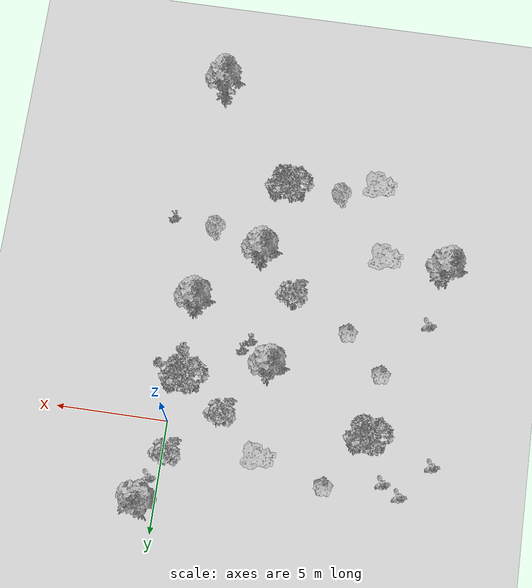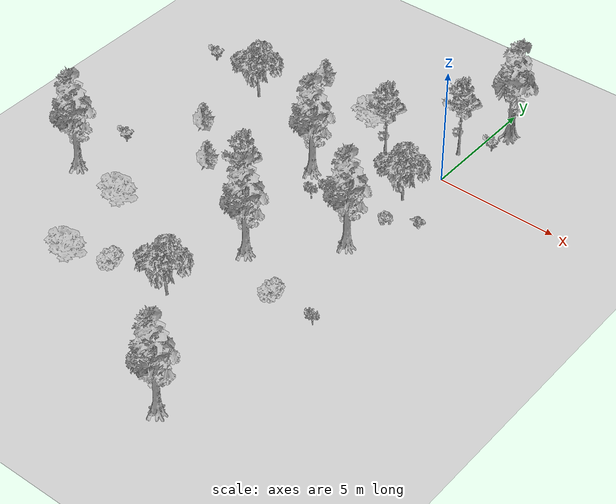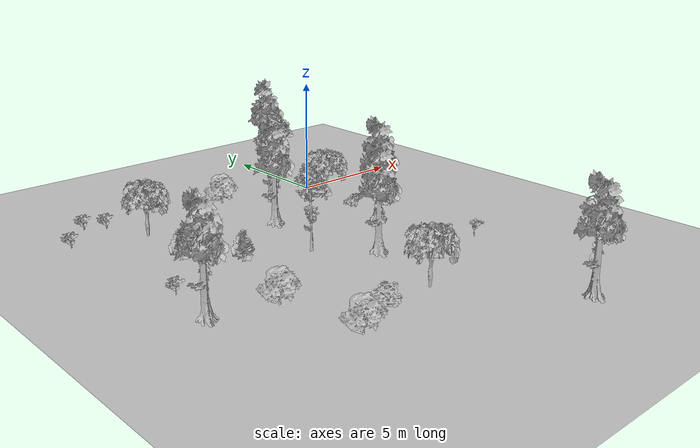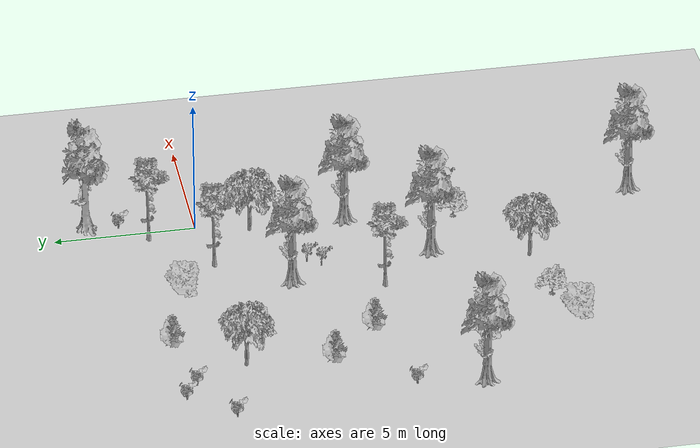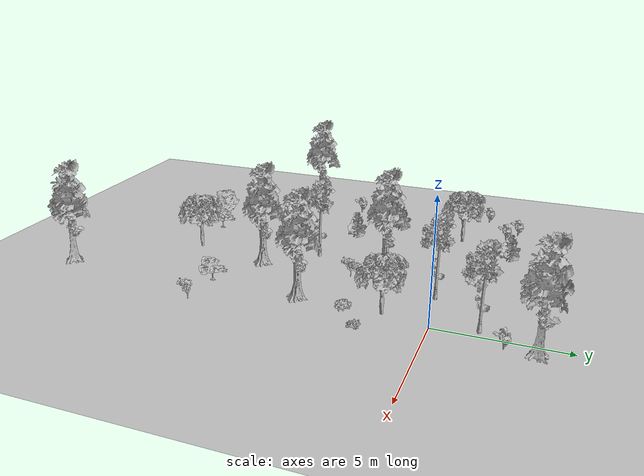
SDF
<sdf version="1.7">
 <world name="default">
  <model name="ground_plane">
   <static>1</static>
   <link name="link">
    <collision name="collision">
     <geometry><plane><normal>0 0 1</normal><size>100 100</size></plane></geometry>
     <surface>
      <contact><collide_bitmask>65535</collide_bitmask></contact>
      <friction><ode><mu>100</mu><mu2>50</mu2></ode></friction>
     </surface>
    </collision>
    <visual name="visual">
     <cast_shadows>0</cast_shadows>
     <geometry><plane><normal>0 0 1</normal><size>100 100</size></plane></geometry>
     <material>
      <script><uri>file://media/materials/scripts/gazebo.material</uri><name>Gazebo/Grey</name></script>
     </material>
    </visual>
   </link>
  </model>
  <model name="Tree 4">
   <static>1</static>
   <pose>-4.10895 -2.74921 8e-06 1.57079 -0 0</pose>
   <link name="link">
    <collision name="collision">
     <geometry><mesh><scale>1 1 1</scale><uri>model://tree_4/meshes/tree_4.obj</uri></mesh></geometry>
    </collision>
    <visual name="visual">
     <geometry><mesh><scale>1 1 1</scale><uri>model://tree_4/meshes/tree_4.obj</uri></mesh></geometry>
    </visual>
   </link>
  </model>
  <model name="Tree 4_clone_0">
   <static>1</static>
   <pose>0.59282 3.79577 8e-06 1.57079 -5e-06 -0.837257</pose>
   <link name="link">
    <collision name="collision">
     <geometry><mesh><scale>1 1 1</scale><uri>model://tree_4/meshes/tree_4.obj</uri></mesh></geometry>
    </collision>
    <visual name="visual">
     <geometry><mesh><scale>1 1 1</scale><uri>model://tree_4/meshes/tree_4.obj</uri></mesh></geometry>
    </visual>
   </link>
  </model>
  <model name="Tree 4_clone_3">
   <static>1</static>
   <pose>-3.0868 -7.84555 8e-06 1.57079 -0 0</pose>
   <link name="link">
    <collision name="collision">
     <geometry><mesh><scale>1 1 1</scale><uri>model://tree_4/meshes/tree_4.obj</uri></mesh></geometry>
    </collision>
    <visual name="visual">
     <geometry><mesh><scale>1 1 1</scale><uri>model://tree_4/meshes/tree_4.obj</uri></mesh></geometry>
    </visual>
   </link>
  </model>
  <model name="Tree 4_clone_6">
   <static>1</static>
   <pose>-0.50347 -5.24765 2.3e-05 1.57079 -0 0</pose>
   <link name="link">
    <collision name="collision">
     <geometry><mesh><scale>1 1 1</scale><uri>model://tree_4/meshes/tree_4.obj</uri></mesh></geometry>
    </collision>
    <visual name="visual">
     <geometry><mesh><scale>1 1 1</scale><uri>model://tree_4/meshes/tree_4.obj</uri></mesh></geometry>
    </visual>
   </link>
  </model>
  <model name="Tree 3_clone">
   <static>1</static>
   <pose>-4.18722 0.997077 0 1.57079 -0 0</pose>
   <link name="link">
    <collision name="collision">
     <geometry><mesh><scale>1 1 1</scale><uri>model://tree_3/meshes/tree_3.obj</uri></mesh></geometry>
    </collision>
    <visual name="visual">
     <geometry><mesh><scale>1 1 1</scale><uri>model://tree_3/meshes/tree_3.obj</uri></mesh></geometry>
    </visual>
   </link>
  </model>
  <model name="Tree 5_clone_2">
   <static>1</static>
   <pose>-7.42578 -4.99475 0 1.57079 -0 0</pose>
   <link name="link">
    <collision name="collision">
     <geometry><mesh><scale>1 1 1</scale><uri>model://tree_5/meshes/tree.obj</uri></mesh></geometry>
    </collision>
    <visual name="visual">
     <geometry><mesh><scale>1 1 1</scale><uri>model://tree_5/meshes/tree.obj</uri></mesh></geometry>
    </visual>
   </link>
  </model>
  <model name="Tree 5_clone_3">
   <static>1</static>
   <pose>-7.18349 1.96175 0 1.57079 -0 0</pose>
   <link name="link">
    <collision name="collision">
     <geometry><mesh><scale>1 1 1</scale><uri>model://tree_5/meshes/tree.obj</uri></mesh></geometry>
    </collision>
    <visual name="visual">
     <geometry><mesh><scale>1 1 1</scale><uri>model://tree_5/meshes/tree.obj</uri></mesh></geometry>
    </visual>
   </link>
  </model>
  <model name="Tree 1">
   <static>1</static>
   <pose>-0.845654 -9.10169 0 1.57079 -0 0</pose>
   <link name="link">
    <collision name="collision">
     <geometry><mesh><scale>1 1 1</scale><uri>model://tree_1/meshes/tree_1.obj</uri></mesh></geometry>
    </collision>
    <visual name="visual">
     <geometry><mesh><scale>1 1 1</scale><uri>model://tree_1/meshes/tree_1.obj</uri></mesh></geometry>
    </visual>
   </link>
  </model>
  <model name="Tree 2">
   <static>1</static>
   <pose>-0.483105 -1.86968 0 1.57079 -0 0</pose>
   <link name="link">
    <collision name="collision">
     <geometry><mesh><scale>1 1 1</scale><uri>model://tree_2/meshes/tree_2.obj</uri></mesh></geometry>
    </collision>
    <visual name="visual">
     <geometry><mesh><scale>1 1 1</scale><uri>model://tree_2/meshes/tree_2.obj</uri></mesh></geometry>
    </visual>
   </link>
  </model>
  <model name="Tree 9_clone">
   <static>1</static>
   <pose>-0.40374 1.71359 0 1.57079 -0 0</pose>
   <link name="link">
    <collision name="collision">
     <geometry><mesh><scale>1 1 1</scale><uri>model://tree_9/meshes/tree_9.obj</uri></mesh></geometry>
    </collision>
    <visual name="visual">
     <geometry><mesh><scale>1 1 1</scale><uri>model://tree_9/meshes/tree_9.obj</uri></mesh></geometry>
    </visual>
   </link>
  </model>
  <model name="Tree 9_clone_0">
   <static>1</static>
   <pose>-2.46652 -0.27951 0 1.57079 -0 0</pose>
   <link name="link">
    <collision name="collision">
     <geometry><mesh><scale>1 1 1</scale><uri>model://tree_9/meshes/tree_9.obj</uri></mesh></geometry>
    </collision>
    <visual name="visual">
     <geometry><mesh><scale>1 1 1</scale><uri>model://tree_9/meshes/tree_9.obj</uri></mesh></geometry>
    </visual>
   </link>
  </model>
  <model name="Tree 9_clone_2">
   <static>1</static>
   <pose>-4.79688 -5.89147 0 1.57079 -0 0</pose>
   <link name="link">
    <collision name="collision">
     <geometry><mesh><scale>1 1 1</scale><uri>model://tree_9/meshes/tree_9.obj</uri></mesh></geometry>
    </collision>
    <visual name="visual">
     <geometry><mesh><scale>1 1 1</scale><uri>model://tree_9/meshes/tree_9.obj</uri></mesh></geometry>
    </visual>
   </link>
  </model>
  <model name="Bush 2">
   <static>1</static>
   <pose>0.761908 -2.56617 0 1.57079 -0 0</pose>
   <link name="link">
    <collision name="collision">
     <geometry><mesh><scale>1 1 1</scale><uri>model://bush_2/meshes/bush_2.obj</uri></mesh></geometry>
    </collision>
    <visual name="visual">
     <geometry><mesh><scale>1 1 1</scale><uri>model://bush_2/meshes/bush_2.obj</uri></mesh></geometry>
    </visual>
   </link>
  </model>
  <model name="Bush 3">
   <static>1</static>
   <pose>-0.168829 -3.26505 0 1.57079 -0 0</pose>
   <link name="link">
    <collision name="collision">
     <geometry><mesh><scale>1 1 1</scale><uri>model://bush_3/meshes/bush_3.obj</uri></mesh></geometry>
    </collision>
    <visual name="visual">
     <geometry><mesh><scale>1 1 1</scale><uri>model://bush_3/meshes/bush_3.obj</uri></mesh></geometry>
    </visual>
   </link>
  </model>
  <model name="Bush 5">
   <static>1</static>
   <pose>-3.16499 -3.93963 0 1.57079 -0 0</pose>
   <link name="link">
    <collision name="collision">
     <geometry><mesh><scale>1 1 1</scale><uri>model://bush_5/meshes/bush_5.obj</uri></mesh></geometry>
    </collision>
    <visual name="visual">
     <geometry><mesh><scale>1 1 1</scale><uri>model://bush_5/meshes/bush_5.obj</uri></mesh></geometry>
    </visual>
   </link>
  </model>
  <model name="Bush 5_0">
   <static>1</static>
   <pose>-2.83965 -3.48064 0 1.57079 -0 0</pose>
   <link name="link">
    <collision name="collision">
     <geometry><mesh><scale>1 1 1</scale><uri>model://bush_5/meshes/bush_5.obj</uri></mesh></geometry>
    </collision>
    <visual name="visual">
     <geometry><mesh><scale>1 1 1</scale><uri>model://bush_5/meshes/bush_5.obj</uri></mesh></geometry>
    </visual>
   </link>
  </model>
  <model name="Bush 0">
   <static>1</static>
   <pose>0.485426 2.65857 0 1.57079 -0 0</pose>
   <link name="link">
    <collision name="collision">
     <geometry><mesh><scale>1 1 1</scale><uri>model://bush_0/meshes/bush_0.obj</uri></mesh></geometry>
    </collision>
    <visual name="visual">
     <geometry><mesh><scale>1 1 1</scale><uri>model://bush_0/meshes/bush_0.obj</uri></mesh></geometry>
    </visual>
   </link>
  </model>
  <model name="Bush 5_1">
   <static>1</static>
   <pose>1.09545 -9.17195 0 1.57079 -0 0</pose>
   <link name="link">
    <collision name="collision">
     <geometry><mesh><scale>1 1 1</scale><uri>model://bush_5/meshes/bush_5.obj</uri></mesh></geometry>
    </collision>
    <visual name="visual">
     <geometry><mesh><scale>1 1 1</scale><uri>model://bush_5/meshes/bush_5.obj</uri></mesh></geometry>
    </visual>
   </link>
  </model>
  <model name="Tree 2_0">
   <static>1</static>
   <pose>-8.80251 -0.34066 0 1.57079 -0 0</pose>
   <link name="link">
    <collision name="collision">
     <geometry><mesh><scale>1 1 1</scale><uri>model://tree_2/meshes/tree_2.obj</uri></mesh></geometry>
    </collision>
    <visual name="visual">
     <geometry><mesh><scale>1 1 1</scale><uri>model://tree_2/meshes/tree_2.obj</uri></mesh></geometry>
    </visual>
   </link>
  </model>
  <model name="Tree 3_2">
   <static>1</static>
   <pose>-8.02105 -12.1285 0 1.57079 -0 0</pose>
   <link name="link">
    <collision name="collision">
     <geometry><mesh><scale>1 1 1</scale><uri>model://tree_3/meshes/tree_3.obj</uri></mesh></geometry>
    </collision>
    <visual name="visual">
     <geometry><mesh><scale>1 1 1</scale><uri>model://tree_3/meshes/tree_3.obj</uri></mesh></geometry>
    </visual>
   </link>
  </model>
  <model name="Tree 1_0">
   <static>1</static>
   <pose>-6.36833 -11.4651 0 1.57079 -0 0</pose>
   <link name="link">
    <collision name="collision">
     <geometry><mesh><scale>1 1 1</scale><uri>model://tree_1/meshes/tree_1.obj</uri></mesh></geometry>
    </collision>
    <visual name="visual">
     <geometry><mesh><scale>1 1 1</scale><uri>model://tree_1/meshes/tree_1.obj</uri></mesh></geometry>
    </visual>
   </link>
  </model>
  <model name="Tree 2_1">
   <static>1</static>
   <pose>-3.89184 -11.2176 0 1.57079 -0 0</pose>
   <link name="link">
    <collision name="collision">
     <geometry><mesh><scale>1 1 1</scale><uri>model://tree_2/meshes/tree_2.obj</uri></mesh></geometry>
    </collision>
    <visual name="visual">
     <geometry><mesh><scale>1 1 1</scale><uri>model://tree_2/meshes/tree_2.obj</uri></mesh></geometry>
    </visual>
   </link>
  </model>
  <model name="Tree 4_1">
   <static>1</static>
   <pose>-0.3332 -15.5438 0 1.57079 -0 0</pose>
   <link name="link">
    <collision name="collision">
     <geometry><mesh><scale>1 1 1</scale><uri>model://tree_4/meshes/tree_4.obj</uri></mesh></geometry>
    </collision>
    <visual name="visual">
     <geometry><mesh><scale>1 1 1</scale><uri>model://tree_4/meshes/tree_4.obj</uri></mesh></geometry>
    </visual>
   </link>
  </model>
  <model name="Tree 4_1_clone_5">
   <static>1</static>
   <pose>-11.256 -8.13053 0 1.57079 -0 0</pose>
   <link name="link">
    <collision name="collision">
     <geometry><mesh><scale>1 1 1</scale><uri>model://tree_4/meshes/tree_4.obj</uri></mesh></geometry>
    </collision>
    <visual name="visual">
     <geometry><mesh><scale>1 1 1</scale><uri>model://tree_4/meshes/tree_4.obj</uri></mesh></geometry>
    </visual>
   </link>
  </model>
  <model name="Tree 3_clone_10">
   <static>1</static>
   <pose>-8.67734 -8.75003 0 1.57079 -0 0</pose>
   <link name="link">
    <collision name="collision">
     <geometry><mesh><scale>1 1 1</scale><uri>model://tree_3/meshes/tree_3.obj</uri></mesh></geometry>
    </collision>
    <visual name="visual">
     <geometry><mesh><scale>1 1 1</scale><uri>model://tree_3/meshes/tree_3.obj</uri></mesh></geometry>
    </visual>
   </link>
  </model>
  <model name="Tree 5_clone_2_clone">
   <static>1</static>
   <pose>-9.107 -3.30673 0 1.57079 -0 0</pose>
   <link name="link">
    <collision name="collision">
     <geometry><mesh><scale>1 1 1</scale><uri>model://tree_5/meshes/tree.obj</uri></mesh></geometry>
    </collision>
    <visual name="visual">
     <geometry><mesh><scale>1 1 1</scale><uri>model://tree_5/meshes/tree.obj</uri></mesh></geometry>
    </visual>
   </link>
  </model>
  <model name="Bush 0_1_clone_4">
   <static>1</static>
   <pose>-11.7265 0.479194 0 1.57079 -0 0</pose>
   <link name="link">
    <collision name="collision">
     <geometry><mesh><scale>1 1 1</scale><uri>model://bush_0/meshes/bush_0.obj</uri></mesh></geometry>
    </collision>
    <visual name="visual">
     <geometry><mesh><scale>1 1 1</scale><uri>model://bush_0/meshes/bush_0.obj</uri></mesh></geometry>
    </visual>
   </link>
  </model>
  <model name="Bush 0_1_clone_5">
   <static>1</static>
   <pose>-10.9185 -5.8042 0 1.57079 -0 0</pose>
   <link name="link">
    <collision name="collision">
     <geometry><mesh><scale>1 1 1</scale><uri>model://bush_0/meshes/bush_0.obj</uri></mesh></geometry>
    </collision>
    <visual name="visual">
     <geometry><mesh><scale>1 1 1</scale><uri>model://bush_0/meshes/bush_0.obj</uri></mesh></geometry>
    </visual>
   </link>
  </model>
  <model name="Bush 0_1_clone_0_clone">
   <static>1</static>
   <pose>-9.6702 1.50731 0 1.57079 -0 0</pose>
   <link name="link">
    <collision name="collision">
     <geometry><mesh><scale>1 1 1</scale><uri>model://bush_0/meshes/bush_0.obj</uri></mesh></geometry>
    </collision>
    <visual name="visual">
     <geometry><mesh><scale>1 1 1</scale><uri>model://bush_0/meshes/bush_0.obj</uri></mesh></geometry>
    </visual>
   </link>
  </model>
  <model name="Bush 0_1_clone_0_clone_0">
   <static>1</static>
   <pose>-10.444 1.97531 0 1.57079 -0 0</pose>
   <link name="link">
    <collision name="collision">
     <geometry><mesh><scale>1 1 1</scale><uri>model://bush_0/meshes/bush_0.obj</uri></mesh></geometry>
    </collision>
    <visual name="visual">
     <geometry><mesh><scale>1 1 1</scale><uri>model://bush_0/meshes/bush_0.obj</uri></mesh></geometry>
    </visual>
   </link>
  </model>
 </world>
</sdf>
